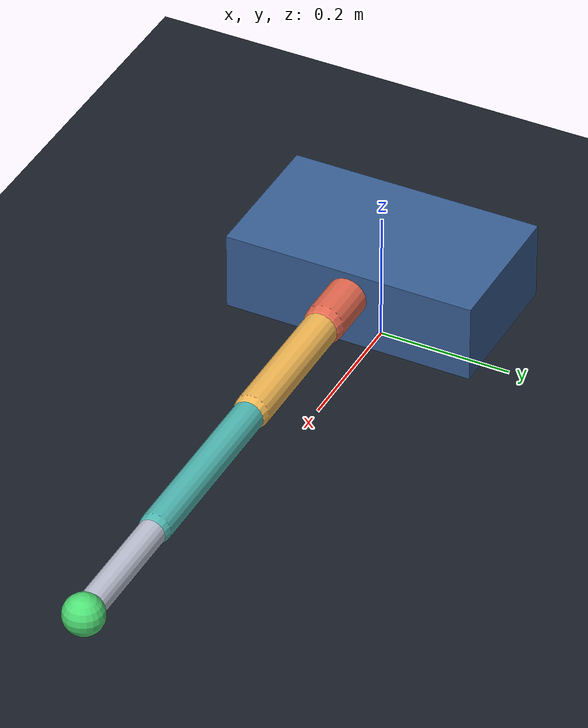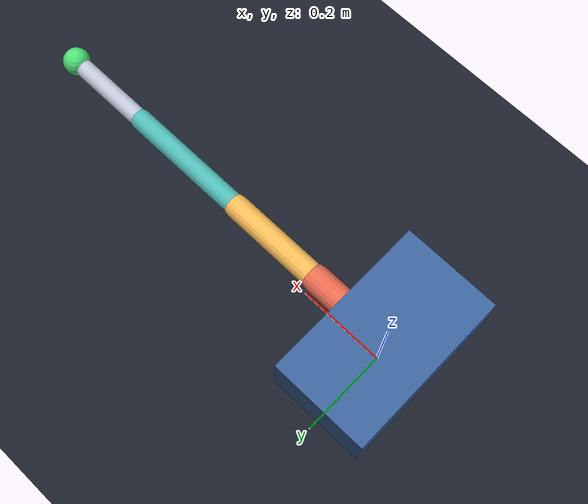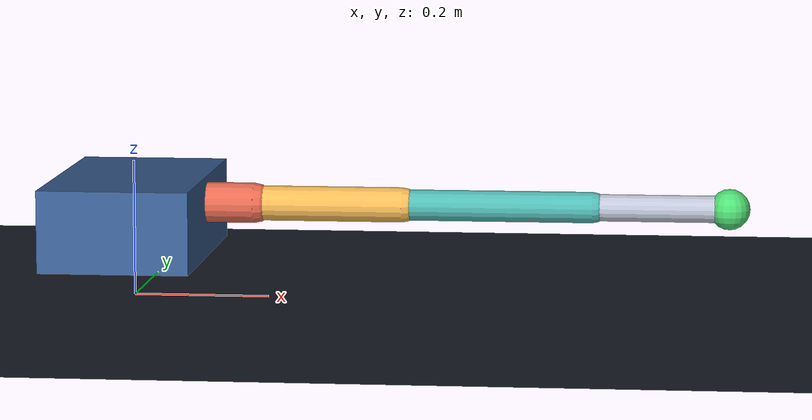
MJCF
<mujoco model="openrobot_monitor">
  <compiler angle="radian" autolimits="true"/>
  <option timestep="0.01" gravity="0 0 0"/>

  <visual>
    <headlight ambient="0.45 0.45 0.45" diffuse="0.65 0.65 0.65" specular="0.15 0.15 0.15"/>
    <rgba haze="0.12 0.15 0.18 1"/>
  </visual>

  <asset>
    <texture name="sky" type="skybox" builtin="gradient" rgb1="0.08 0.10 0.13" rgb2="0.18 0.23 0.30" width="256" height="256"/>
    <material name="base_mat" rgba="0.22 0.37 0.58 1"/>
    <material name="link1_mat" rgba="0.89 0.41 0.31 1"/>
    <material name="link2_mat" rgba="0.95 0.72 0.33 1"/>
    <material name="link3_mat" rgba="0.31 0.72 0.70 1"/>
    <material name="link4_mat" rgba="0.74 0.76 0.83 1"/>
    <material name="tip_mat" rgba="0.30 0.86 0.45 1"/>
    <material name="floor_mat" rgba="0.10 0.12 0.16 1"/>
  </asset>

  <worldbody>
    <light name="main_light" pos="0 0 2.2" dir="0 0 -1" directional="true"/>
    <geom name="floor" type="plane" pos="0 0 0" size="2.0 2.0 0.1" material="floor_mat"/>

    <body name="base" pos="0 0 0.12">
      <geom name="base_geom" type="box" size="0.11 0.19 0.06" material="base_mat"/>

      <body name="link1" pos="0 0 0.02">
        <joint name="joint1" type="hinge" axis="0 1 0" range="-1.57 3.14"/>
        <geom name="link1_geom" type="capsule" fromto="0 0 0 0.18 0 0" size="0.030" material="link1_mat"/>

        <body name="link2" pos="0.18 0 0">
          <joint name="joint2" type="hinge" axis="1 0 0" range="-3.14 3.14"/>
          <geom name="link2_geom" type="capsule" fromto="0 0 0 0.22 0 0" size="0.026" material="link2_mat"/>

          <body name="link3" pos="0.22 0 0">
            <joint name="joint3" type="hinge" axis="0 0 -1" range="-3.14 3.14"/>
            <geom name="link3_geom" type="capsule" fromto="0 0 0 0.28 0 0" size="0.023" material="link3_mat"/>

            <body name="link4" pos="0.28 0 0">
              <joint name="joint4" type="hinge" axis="1 0 0" range="-3.14 3.14"/>
              <geom name="link4_geom" type="capsule" fromto="0 0 0 0.20 0 0" size="0.020" material="link4_mat"/>
              <geom name="tip_geom" type="sphere" pos="0.20 0 0" size="0.030" material="tip_mat"/>
              <site name="tip" pos="0.20 0 0" size="0.015" rgba="0.20 0.90 0.45 1"/>
            </body>
          </body>
        </body>
      </body>
    </body>
  </worldbody>
</mujoco>
